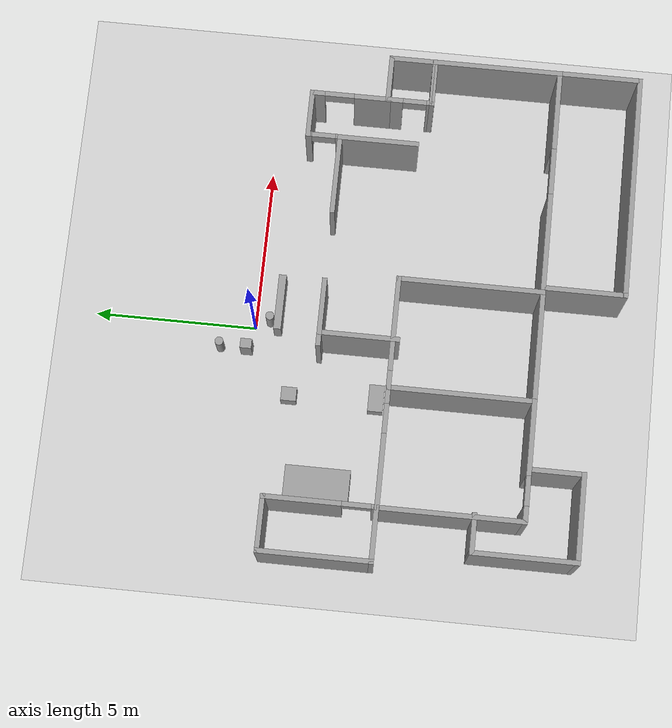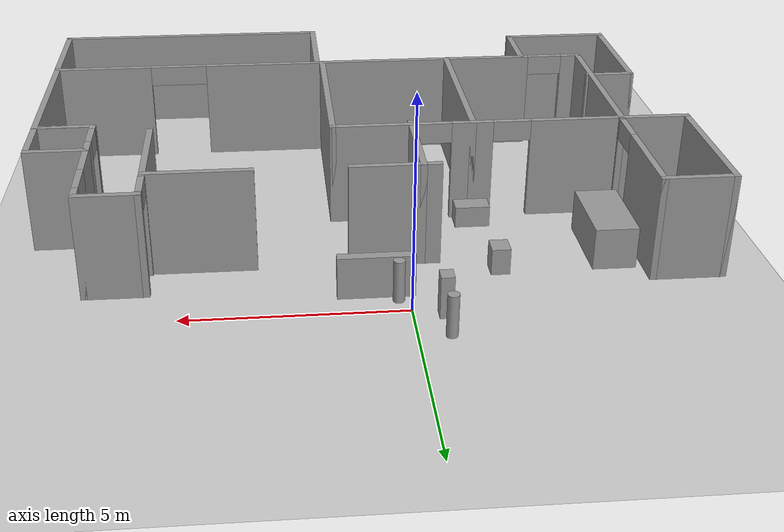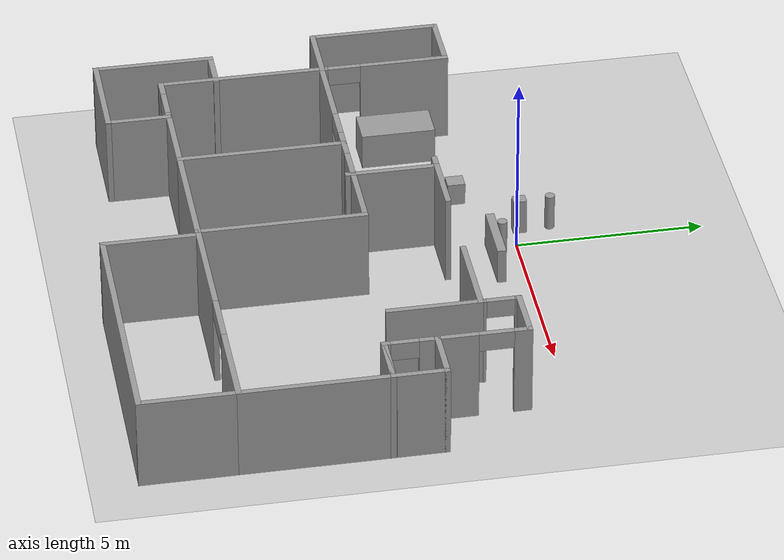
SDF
<sdf version="1.6">
 <world name="default">
  <model name="ground_plane">
   <static>1</static>
   <link name="link">
    <collision name="collision">
     <geometry><plane><normal>0 0 1</normal><size>100 100</size></plane></geometry>
     <surface><friction><ode><mu>100</mu><mu2>50</mu2></ode></friction></surface>
    </collision>
    <visual name="visual">
     <cast_shadows>0</cast_shadows>
     <geometry><plane><normal>0 0 1</normal><size>100 100</size></plane></geometry>
     <material>
      <script><uri>file://media/materials/scripts/gazebo.material</uri><name>Gazebo/Grey</name></script>
     </material>
    </visual>
   </link>
  </model>
  <model name="cma_varanda1">
   <pose>-6.32518 -2.59313 0 0 -0 0</pose>
   <link name="Wall_0">
    <pose>0.8 0 0 0 0 -1.5708</pose>
    <visual name="Wall_0_Visual_0">
     <pose>-0.5525 0 1.25 0 -0 0</pose>
     <geometry><box><size>2.395 0.15 2.5</size></box></geometry>
     <material>
      <script><uri>file://media/materials/scripts/gazebo.material</uri><name>Gazebo/Grey</name></script>
      <ambient>1 1 1 1</ambient>
     </material>
    </visual>
    <collision name="Wall_0_Collision_0">
     <geometry><box><size>2.395 0.15 2.5</size></box></geometry>
     <pose>-0.5525 0 1.25 0 -0 0</pose>
    </collision>
    <visual name="Wall_0_Visual_1">
     <pose>1.6375 0 1.25 0 -0 0</pose>
     <geometry><box><size>0.225 0.15 2.5</size></box></geometry>
     <material>
      <script><uri>file://media/materials/scripts/gazebo.material</uri><name>Gazebo/Grey</name></script>
      <ambient>1 1 1 1</ambient>
     </material>
    </visual>
    <collision name="Wall_0_Collision_1">
     <geometry><box><size>0.225 0.15 2.5</size></box></geometry>
     <pose>1.6375 0 1.25 0 -0 0</pose>
    </collision>
    <visual name="Wall_0_Visual_2">
     <pose>1.085 0 2.25 0 -0 0</pose>
     <geometry><box><size>0.88 0.15 0.5</size></box></geometry>
     <material>
      <script><uri>file://media/materials/scripts/gazebo.material</uri><name>Gazebo/Grey</name></script>
      <ambient>1 1 1 1</ambient>
     </material>
    </visual>
    <collision name="Wall_0_Collision_2">
     <geometry><box><size>0.88 0.15 0.5</size></box></geometry>
     <pose>1.085 0 2.25 0 -0 0</pose>
    </collision>
   </link>
   <link name="Wall_1">
    <collision name="Wall_1_Collision">
     <geometry><box><size>1.75 0.15 2.5</size></box></geometry>
     <pose>0 0 1.25 0 -0 0</pose>
    </collision>
    <visual name="Wall_1_Visual">
     <pose>0 0 1.25 0 -0 0</pose>
     <geometry><box><size>1.75 0.15 2.5</size></box></geometry>
     <material>
      <script><uri>file://media/materials/scripts/gazebo.material</uri><name>Gazebo/Grey</name></script>
      <ambient>1 1 1 1</ambient>
     </material>
    </visual>
    <pose>0 -1.675 0 0 -0 3.14159</pose>
   </link>
   <link name="Wall_2">
    <collision name="Wall_2_Collision">
     <geometry><box><size>3.5 0.15 2.5</size></box></geometry>
     <pose>0 0 1.25 0 -0 0</pose>
    </collision>
    <visual name="Wall_2_Visual">
     <pose>0 0 1.25 0 -0 0</pose>
     <geometry><box><size>3.5 0.15 2.5</size></box></geometry>
     <material>
      <script><uri>file://media/materials/scripts/gazebo.material</uri><name>Gazebo/Grey</name></script>
      <ambient>1 1 1 1</ambient>
     </material>
    </visual>
    <pose>-0.8 0 0 0 -0 1.5708</pose>
   </link>
   <link name="Wall_3">
    <collision name="Wall_3_Collision">
     <geometry><box><size>1.75 0.15 2.5</size></box></geometry>
     <pose>0 0 1.25 0 -0 0</pose>
    </collision>
    <visual name="Wall_3_Visual">
     <pose>0 0 1.25 0 -0 0</pose>
     <geometry><box><size>1.75 0.15 2.5</size></box></geometry>
     <material>
      <script><uri>file://media/materials/scripts/gazebo.material</uri><name>Gazebo/Grey</name></script>
      <ambient>1 1 1 1</ambient>
     </material>
    </visual>
    <pose>0 1.675 0 0 -0 0</pose>
   </link>
   <static>1</static>
  </model>
  <model name="cma_quartos">
   <pose>-2.58169 -7.26456 0 0 -0 0</pose>
   <link name="Wall_0">
    <collision name="Wall_0_Collision">
     <geometry><box><size>4.5 0.15 2.5</size></box></geometry>
     <pose>0 0 1.25 0 -0 0</pose>
    </collision>
    <visual name="Wall_0_Visual">
     <pose>0 0 1.25 0 -0 0</pose>
     <geometry><box><size>4.5 0.15 2.5</size></box></geometry>
     <material>
      <script><uri>file://media/materials/scripts/gazebo.material</uri><name>Gazebo/Grey</name></script>
      <ambient>1 1 1 1</ambient>
     </material>
    </visual>
    <pose>0.645 0.81 0 0 0 -1.5708</pose>
   </link>
   <link name="Wall_1">
    <pose>-1.155 -1.365 0 0 -0 3.14159</pose>
    <visual name="Wall_1_Visual_0">
     <pose>-0.7225 0 1.25 0 -0 0</pose>
     <geometry><box><size>2.305 0.15 2.5</size></box></geometry>
     <material>
      <script><uri>file://media/materials/scripts/gazebo.material</uri><name>Gazebo/Grey</name></script>
      <ambient>1 1 1 1</ambient>
     </material>
    </visual>
    <collision name="Wall_1_Collision_0">
     <geometry><box><size>2.305 0.15 2.5</size></box></geometry>
     <pose>-0.7225 0 1.25 0 -0 0</pose>
    </collision>
    <visual name="Wall_1_Visual_1">
     <pose>1.6025 0 1.25 0 -0 0</pose>
     <geometry><box><size>0.545 0.15 2.5</size></box></geometry>
     <material>
      <script><uri>file://media/materials/scripts/gazebo.material</uri><name>Gazebo/Grey</name></script>
      <ambient>1 1 1 1</ambient>
     </material>
    </visual>
    <collision name="Wall_1_Collision_1">
     <geometry><box><size>0.545 0.15 2.5</size></box></geometry>
     <pose>1.6025 0 1.25 0 -0 0</pose>
    </collision>
    <visual name="Wall_1_Visual_2">
     <pose>0.88 0 2.25 0 -0 0</pose>
     <geometry><box><size>0.9 0.15 0.5</size></box></geometry>
     <material>
      <script><uri>file://media/materials/scripts/gazebo.material</uri><name>Gazebo/Grey</name></script>
      <ambient>1 1 1 1</ambient>
     </material>
    </visual>
    <collision name="Wall_1_Collision_2">
     <geometry><box><size>0.9 0.15 0.5</size></box></geometry>
     <pose>0.88 0 2.25 0 -0 0</pose>
    </collision>
   </link>
   <link name="Wall_10">
    <collision name="Wall_10_Collision">
     <geometry><box><size>1.75 0.15 2.5</size></box></geometry>
     <pose>0 0 1.25 0 -0 0</pose>
    </collision>
    <visual name="Wall_10_Visual">
     <pose>0 0 1.25 0 -0 0</pose>
     <geometry><box><size>1.75 0.15 2.5</size></box></geometry>
     <material>
      <script><uri>file://media/materials/scripts/gazebo.material</uri><name>Gazebo/Grey</name></script>
      <ambient>1 1 1 1</ambient>
     </material>
    </visual>
    <pose>-1.395 -2.185 0 0 0 -1.5708</pose>
   </link>
   <link name="Wall_11">
    <collision name="Wall_11_Collision">
     <geometry><box><size>2.75 0.15 2.5</size></box></geometry>
     <pose>0 0 1.25 0 -0 0</pose>
    </collision>
    <visual name="Wall_11_Visual">
     <pose>0 0 1.25 0 -0 0</pose>
     <geometry><box><size>2.75 0.15 2.5</size></box></geometry>
     <material>
      <script><uri>file://media/materials/scripts/gazebo.material</uri><name>Gazebo/Grey</name></script>
      <ambient>1 1 1 1</ambient>
     </material>
    </visual>
    <pose>-2.695 -2.985 0 0 -0 3.14159</pose>
   </link>
   <link name="Wall_12">
    <collision name="Wall_12_Collision">
     <geometry><box><size>3.25 0.15 2.5</size></box></geometry>
     <pose>0 0 1.25 0 -0 0</pose>
    </collision>
    <visual name="Wall_12_Visual">
     <pose>0 0 1.25 0 -0 0</pose>
     <geometry><box><size>3.25 0.15 2.5</size></box></geometry>
     <material>
      <script><uri>file://media/materials/scripts/gazebo.material</uri><name>Gazebo/Grey</name></script>
      <ambient>1 1 1 1</ambient>
     </material>
    </visual>
    <pose>-3.995 -1.435 0 0 -0 1.5708</pose>
   </link>
   <link name="Wall_13">
    <collision name="Wall_13_Collision">
     <geometry><box><size>1.25 0.15 2.5</size></box></geometry>
     <pose>0 0 1.25 0 -0 0</pose>
    </collision>
    <visual name="Wall_13_Visual">
     <pose>0 0 1.25 0 -0 0</pose>
     <geometry><box><size>1.25 0.15 2.5</size></box></geometry>
     <material>
      <script><uri>file://media/materials/scripts/gazebo.material</uri><name>Gazebo/Grey</name></script>
      <ambient>1 1 1 1</ambient>
     </material>
    </visual>
    <pose>-3.445 0.115 0 0 -0 0</pose>
   </link>
   <link name="Wall_2">
    <collision name="Wall_2_Collision">
     <geometry><box><size>4.5 0.15 2.5</size></box></geometry>
     <pose>0 0 1.25 0 -0 0</pose>
    </collision>
    <visual name="Wall_2_Visual">
     <pose>0 0 1.25 0 -0 0</pose>
     <geometry><box><size>4.5 0.15 2.5</size></box></geometry>
     <material>
      <script><uri>file://media/materials/scripts/gazebo.material</uri><name>Gazebo/Grey</name></script>
      <ambient>1 1 1 1</ambient>
     </material>
    </visual>
    <pose>-2.955 0.81 0 0 -0 1.5708</pose>
   </link>
   <link name="Wall_3">
    <pose>-1.155 2.985 0 0 -0 0</pose>
    <visual name="Wall_3_Visual_0">
     <pose>-0.7325 0 1.25 0 -0 0</pose>
     <geometry><box><size>2.285 0.15 2.5</size></box></geometry>
     <material>
      <script><uri>file://media/materials/scripts/gazebo.material</uri><name>Gazebo/Grey</name></script>
      <ambient>1 1 1 1</ambient>
     </material>
    </visual>
    <collision name="Wall_3_Collision_0">
     <geometry><box><size>2.285 0.15 2.5</size></box></geometry>
     <pose>-0.7325 0 1.25 0 -0 0</pose>
    </collision>
    <visual name="Wall_3_Visual_1">
     <pose>1.5925 0 1.25 0 -0 0</pose>
     <geometry><box><size>0.565 0.15 2.5</size></box></geometry>
     <material>
      <script><uri>file://media/materials/scripts/gazebo.material</uri><name>Gazebo/Grey</name></script>
      <ambient>1 1 1 1</ambient>
     </material>
    </visual>
    <collision name="Wall_3_Collision_1">
     <geometry><box><size>0.565 0.15 2.5</size></box></geometry>
     <pose>1.5925 0 1.25 0 -0 0</pose>
    </collision>
    <visual name="Wall_3_Visual_2">
     <pose>0.86 0 2.25 0 -0 0</pose>
     <geometry><box><size>0.9 0.15 0.5</size></box></geometry>
     <material>
      <script><uri>file://media/materials/scripts/gazebo.material</uri><name>Gazebo/Grey</name></script>
      <ambient>1 1 1 1</ambient>
     </material>
    </visual>
    <collision name="Wall_3_Collision_2">
     <geometry><box><size>0.9 0.15 0.5</size></box></geometry>
     <pose>0.86 0 2.25 0 -0 0</pose>
    </collision>
   </link>
   <link name="Wall_6">
    <pose>2.32 2.985 0 0 -0 0</pose>
    <visual name="Wall_6_Visual_0">
     <pose>-1.4575 0 1.25 0 -0 0</pose>
     <geometry><box><size>0.585 0.15 2.5</size></box></geometry>
     <material>
      <script><uri>file://media/materials/scripts/gazebo.material</uri><name>Gazebo/Grey</name></script>
      <ambient>1 1 1 1</ambient>
     </material>
    </visual>
    <collision name="Wall_6_Collision_0">
     <geometry><box><size>0.585 0.15 2.5</size></box></geometry>
     <pose>-1.4575 0 1.25 0 -0 0</pose>
    </collision>
    <visual name="Wall_6_Visual_1">
     <pose>0.7425 0 1.25 0 -0 0</pose>
     <geometry><box><size>2.015 0.15 2.5</size></box></geometry>
     <material>
      <script><uri>file://media/materials/scripts/gazebo.material</uri><name>Gazebo/Grey</name></script>
      <ambient>1 1 1 1</ambient>
     </material>
    </visual>
    <collision name="Wall_6_Collision_1">
     <geometry><box><size>2.015 0.15 2.5</size></box></geometry>
     <pose>0.7425 0 1.25 0 -0 0</pose>
    </collision>
    <visual name="Wall_6_Visual_2">
     <pose>-0.715 0 2.25 0 -0 0</pose>
     <geometry><box><size>0.9 0.15 0.5</size></box></geometry>
     <material>
      <script><uri>file://media/materials/scripts/gazebo.material</uri><name>Gazebo/Grey</name></script>
      <ambient>1 1 1 1</ambient>
     </material>
    </visual>
    <collision name="Wall_6_Collision_2">
     <geometry><box><size>0.9 0.15 0.5</size></box></geometry>
     <pose>-0.715 0 2.25 0 -0 0</pose>
    </collision>
   </link>
   <link name="Wall_7">
    <collision name="Wall_7_Collision">
     <geometry><box><size>4.5 0.15 2.5</size></box></geometry>
     <pose>0 0 1.25 0 -0 0</pose>
    </collision>
    <visual name="Wall_7_Visual">
     <pose>0 0 1.25 0 -0 0</pose>
     <geometry><box><size>4.5 0.15 2.5</size></box></geometry>
     <material>
      <script><uri>file://media/materials/scripts/gazebo.material</uri><name>Gazebo/Grey</name></script>
      <ambient>1 1 1 1</ambient>
     </material>
    </visual>
    <pose>3.995 0.81 0 0 0 -1.5708</pose>
   </link>
   <link name="Wall_8">
    <collision name="Wall_8_Collision">
     <geometry><box><size>3.5 0.15 2.5</size></box></geometry>
     <pose>0 0 1.25 0 -0 0</pose>
    </collision>
    <visual name="Wall_8_Visual">
     <pose>0 0 1.25 0 -0 0</pose>
     <geometry><box><size>3.5 0.15 2.5</size></box></geometry>
     <material>
      <script><uri>file://media/materials/scripts/gazebo.material</uri><name>Gazebo/Grey</name></script>
      <ambient>1 1 1 1</ambient>
     </material>
    </visual>
    <pose>2.32 -1.365 0 0 -0 3.14159</pose>
   </link>
   <static>1</static>
  </model>
  <model name="cma_parede_t">
   <pose>0.159955 -3.24016 0 0 -0 0</pose>
   <link name="Wall_15">
    <collision name="Wall_15_Collision">
     <geometry><box><size>2.5 0.15 2.5</size></box></geometry>
     <pose>0 0 1.25 0 -0 0</pose>
    </collision>
    <visual name="Wall_15_Visual">
     <pose>0 0 1.25 0 -0 0</pose>
     <geometry><box><size>2.5 0.15 2.5</size></box></geometry>
     <material>
      <script><uri>file://media/materials/scripts/gazebo.material</uri><name>Gazebo/Grey</name></script>
      <ambient>1 1 1 1</ambient>
     </material>
    </visual>
    <pose>-0.625 0 0 0 -0 1.5708</pose>
   </link>
   <link name="Wall_16">
    <collision name="Wall_16_Collision">
     <geometry><box><size>0.5 0.15 2.5</size></box></geometry>
     <pose>0 0 1.25 0 -0 0</pose>
    </collision>
    <visual name="Wall_16_Visual">
     <pose>0 0 1.25 0 -0 0</pose>
     <geometry><box><size>0.5 0.15 2.5</size></box></geometry>
     <material>
      <script><uri>file://media/materials/scripts/gazebo.material</uri><name>Gazebo/Grey</name></script>
      <ambient>1 1 1 1</ambient>
     </material>
    </visual>
    <pose>-0.8 1.175 0 0 -0 3.14159</pose>
   </link>
   <link name="Wall_18">
    <collision name="Wall_18_Collision">
     <geometry><box><size>1.75 0.15 2.5</size></box></geometry>
     <pose>0 0 1.25 0 -0 0</pose>
    </collision>
    <visual name="Wall_18_Visual">
     <pose>0 0 1.25 0 -0 0</pose>
     <geometry><box><size>1.75 0.15 2.5</size></box></geometry>
     <material>
      <script><uri>file://media/materials/scripts/gazebo.material</uri><name>Gazebo/Grey</name></script>
      <ambient>1 1 1 1</ambient>
     </material>
    </visual>
    <pose>0.175 1.175 0 0 -0 0</pose>
   </link>
   <static>1</static>
  </model>
  <model name="cma_parede_L">
   <pose>4.97628 -6.69992 0 0 -0 0</pose>
   <link name="Wall_0">
    <pose>0 -1.925 0 0 -0 0</pose>
    <visual name="Wall_0_Visual_0">
     <pose>-1.985 0 1.25 0 -0 0</pose>
     <geometry><box><size>3.03 0.15 2.5</size></box></geometry>
     <material>
      <script><uri>file://media/materials/scripts/gazebo.material</uri><name>Gazebo/Grey</name></script>
      <ambient>1 1 1 1</ambient>
     </material>
    </visual>
    <collision name="Wall_0_Collision_0">
     <geometry><box><size>3.03 0.15 2.5</size></box></geometry>
     <pose>-1.985 0 1.25 0 -0 0</pose>
    </collision>
    <visual name="Wall_0_Visual_1">
     <pose>2.24 0 1.25 0 -0 0</pose>
     <geometry><box><size>2.52 0.15 2.5</size></box></geometry>
     <material>
      <script><uri>file://media/materials/scripts/gazebo.material</uri><name>Gazebo/Grey</name></script>
      <ambient>1 1 1 1</ambient>
     </material>
    </visual>
    <collision name="Wall_0_Collision_1">
     <geometry><box><size>2.52 0.15 2.5</size></box></geometry>
     <pose>2.24 0 1.25 0 -0 0</pose>
    </collision>
    <visual name="Wall_0_Visual_2">
     <pose>0.255 0 2.25 0 -0 0</pose>
     <geometry><box><size>1.45 0.15 0.5</size></box></geometry>
     <material>
      <script><uri>file://media/materials/scripts/gazebo.material</uri><name>Gazebo/Grey</name></script>
      <ambient>1 1 1 1</ambient>
     </material>
    </visual>
    <collision name="Wall_0_Collision_2">
     <geometry><box><size>1.45 0.15 0.5</size></box></geometry>
     <pose>0.255 0 2.25 0 -0 0</pose>
    </collision>
   </link>
   <link name="Wall_1">
    <collision name="Wall_1_Collision">
     <geometry><box><size>4 0.15 2.5</size></box></geometry>
     <pose>0 0 1.25 0 -0 0</pose>
    </collision>
    <visual name="Wall_1_Visual">
     <pose>0 0 1.25 0 -0 0</pose>
     <geometry><box><size>4 0.15 2.5</size></box></geometry>
     <material>
      <script><uri>file://media/materials/scripts/gazebo.material</uri><name>Gazebo/Grey</name></script>
      <ambient>1 1 1 1</ambient>
     </material>
    </visual>
    <pose>3.425 0 0 0 -0 1.5708</pose>
   </link>
   <link name="Wall_2">
    <collision name="Wall_2_Collision">
     <geometry><box><size>1.5 0.15 2.5</size></box></geometry>
     <pose>0 0 1.25 0 -0 0</pose>
    </collision>
    <visual name="Wall_2_Visual">
     <pose>0 0 1.25 0 -0 0</pose>
     <geometry><box><size>1.5 0.15 2.5</size></box></geometry>
     <material>
      <script><uri>file://media/materials/scripts/gazebo.material</uri><name>Gazebo/Grey</name></script>
      <ambient>1 1 1 1</ambient>
     </material>
    </visual>
    <pose>2.75 1.925 0 0 -0 3.14159</pose>
   </link>
   <static>1</static>
  </model>
  <model name="cma_lavabo">
   <pose>7.72297 -4.09302 0 0 -0 0</pose>
   <link name="Wall_4">
    <pose>-0.675 0 0 0 -0 1.5708</pose>
    <visual name="Wall_4_Visual_0">
     <pose>-0.635 0 1.25 0 -0 0</pose>
     <geometry><box><size>0.23 0.15 2.5</size></box></geometry>
     <material>
      <script><uri>file://media/materials/scripts/gazebo.material</uri><name>Gazebo/Grey</name></script>
      <ambient>1 1 1 1</ambient>
     </material>
    </visual>
    <collision name="Wall_4_Collision_0">
     <geometry><box><size>0.23 0.15 2.5</size></box></geometry>
     <pose>-0.635 0 1.25 0 -0 0</pose>
    </collision>
    <visual name="Wall_4_Visual_1">
     <pose>0.48 0 1.25 0 -0 0</pose>
     <geometry><box><size>0.54 0.15 2.5</size></box></geometry>
     <material>
      <script><uri>file://media/materials/scripts/gazebo.material</uri><name>Gazebo/Grey</name></script>
      <ambient>1 1 1 1</ambient>
     </material>
    </visual>
    <collision name="Wall_4_Collision_1">
     <geometry><box><size>0.54 0.15 2.5</size></box></geometry>
     <pose>0.48 0 1.25 0 -0 0</pose>
    </collision>
    <visual name="Wall_4_Visual_2">
     <pose>-0.155 0 2.25 0 -0 0</pose>
     <geometry><box><size>0.73 0.15 0.5</size></box></geometry>
     <material>
      <script><uri>file://media/materials/scripts/gazebo.material</uri><name>Gazebo/Grey</name></script>
      <ambient>1 1 1 1</ambient>
     </material>
    </visual>
    <collision name="Wall_4_Collision_2">
     <geometry><box><size>0.73 0.15 0.5</size></box></geometry>
     <pose>-0.155 0 2.25 0 -0 0</pose>
    </collision>
   </link>
   <link name="Wall_5">
    <collision name="Wall_5_Collision">
     <geometry><box><size>1.5 0.15 2.5</size></box></geometry>
     <pose>0 0 1.25 0 -0 0</pose>
    </collision>
    <visual name="Wall_5_Visual">
     <pose>0 0 1.25 0 -0 0</pose>
     <geometry><box><size>1.5 0.15 2.5</size></box></geometry>
     <material>
      <script><uri>file://media/materials/scripts/gazebo.material</uri><name>Gazebo/Grey</name></script>
      <ambient>1 1 1 1</ambient>
     </material>
    </visual>
    <pose>0 0.675 0 0 -0 0</pose>
   </link>
   <link name="Wall_6">
    <collision name="Wall_6_Collision">
     <geometry><box><size>1.5 0.15 2.5</size></box></geometry>
     <pose>0 0 1.25 0 -0 0</pose>
    </collision>
    <visual name="Wall_6_Visual">
     <pose>0 0 1.25 0 -0 0</pose>
     <geometry><box><size>1.5 0.15 2.5</size></box></geometry>
     <material>
      <script><uri>file://media/materials/scripts/gazebo.material</uri><name>Gazebo/Grey</name></script>
      <ambient>1 1 1 1</ambient>
     </material>
    </visual>
    <pose>0.675 0 0 0 0 -1.5708</pose>
   </link>
   <link name="Wall_7">
    <collision name="Wall_7_Collision">
     <geometry><box><size>1.5 0.15 2.5</size></box></geometry>
     <pose>0 0 1.25 0 -0 0</pose>
    </collision>
    <visual name="Wall_7_Visual">
     <pose>0 0 1.25 0 -0 0</pose>
     <geometry><box><size>1.5 0.15 2.5</size></box></geometry>
     <material>
      <script><uri>file://media/materials/scripts/gazebo.material</uri><name>Gazebo/Grey</name></script>
      <ambient>1 1 1 1</ambient>
     </material>
    </visual>
    <pose>0 -0.675 0 0 -0 3.14159</pose>
   </link>
   <static>1</static>
  </model>
  <model name="cma_L2">
   <pose>4.51683 -3.24587 0 0 -0 0</pose>
   <link name="Wall_10">
    <collision name="Wall_10_Collision">
     <geometry><box><size>2.5 0.15 2.5</size></box></geometry>
     <pose>0 0 1.25 0 -0 0</pose>
    </collision>
    <visual name="Wall_10_Visual">
     <pose>0 0 1.25 0 -0 0</pose>
     <geometry><box><size>2.5 0.15 2.5</size></box></geometry>
     <material>
      <script><uri>file://media/materials/scripts/gazebo.material</uri><name>Gazebo/Grey</name></script>
      <ambient>1 1 1 1</ambient>
     </material>
    </visual>
    <pose>1.175 0 0 0 0 -1.5708</pose>
   </link>
   <link name="Wall_9">
    <collision name="Wall_9_Collision">
     <geometry><box><size>2.5 0.15 2.5</size></box></geometry>
     <pose>0 0 1.25 0 -0 0</pose>
    </collision>
    <visual name="Wall_9_Visual">
     <pose>0 0 1.25 0 -0 0</pose>
     <geometry><box><size>2.5 0.15 2.5</size></box></geometry>
     <material>
      <script><uri>file://media/materials/scripts/gazebo.material</uri><name>Gazebo/Grey</name></script>
      <ambient>1 1 1 1</ambient>
     </material>
    </visual>
    <pose>0 1.175 0 0 -0 0</pose>
   </link>
   <static>1</static>
  </model>
  <model name="cma_L3">
   <pose>6.37221 -2.26022 0 0 -0 0</pose>
   <link name="Wall_12">
    <pose>-0.675 0.75 0 0 -0 1.5708</pose>
    <visual name="Wall_12_Visual_0">
     <pose>-0.46 0 1.25 0 -0 0</pose>
     <geometry><box><size>0.08 0.15 2.5</size></box></geometry>
     <material>
      <script><uri>file://media/materials/scripts/gazebo.material</uri><name>Gazebo/Grey</name></script>
      <ambient>1 1 1 1</ambient>
     </material>
    </visual>
    <collision name="Wall_12_Collision_0">
     <geometry><box><size>0.08 0.15 2.5</size></box></geometry>
     <pose>-0.46 0 1.25 0 -0 0</pose>
    </collision>
    <visual name="Wall_12_Visual_1">
     <pose>0.405 0 1.25 0 -0 0</pose>
     <geometry><box><size>0.19 0.15 2.5</size></box></geometry>
     <material>
      <script><uri>file://media/materials/scripts/gazebo.material</uri><name>Gazebo/Grey</name></script>
      <ambient>1 1 1 1</ambient>
     </material>
    </visual>
    <collision name="Wall_12_Collision_1">
     <geometry><box><size>0.19 0.15 2.5</size></box></geometry>
     <pose>0.405 0 1.25 0 -0 0</pose>
    </collision>
    <visual name="Wall_12_Visual_2">
     <pose>-0.055 0 2.25 0 -0 0</pose>
     <geometry><box><size>0.73 0.15 0.5</size></box></geometry>
     <material>
      <script><uri>file://media/materials/scripts/gazebo.material</uri><name>Gazebo/Grey</name></script>
      <ambient>1 1 1 1</ambient>
     </material>
    </visual>
    <collision name="Wall_12_Collision_2">
     <geometry><box><size>0.73 0.15 0.5</size></box></geometry>
     <pose>-0.055 0 2.25 0 -0 0</pose>
    </collision>
   </link>
   <link name="Wall_13">
    <collision name="Wall_13_Collision">
     <geometry><box><size>1.5 0.15 2.5</size></box></geometry>
     <pose>0 0 1.25 0 -0 0</pose>
    </collision>
    <visual name="Wall_13_Visual">
     <pose>0 0 1.25 0 -0 0</pose>
     <geometry><box><size>1.5 0.15 2.5</size></box></geometry>
     <material>
      <script><uri>file://media/materials/scripts/gazebo.material</uri><name>Gazebo/Grey</name></script>
      <ambient>1 1 1 1</ambient>
     </material>
    </visual>
    <pose>0 1.175 0 0 -0 0</pose>
   </link>
   <link name="Wall_14">
    <pose>0.675 0 0 0 0 -1.5708</pose>
    <visual name="Wall_14_Visual_0">
     <pose>-1.0175 0 1.25 0 -0 0</pose>
     <geometry><box><size>0.465 0.15 2.5</size></box></geometry>
     <material>
      <script><uri>file://media/materials/scripts/gazebo.material</uri><name>Gazebo/Grey</name></script>
      <ambient>1 1 1 1</ambient>
     </material>
    </visual>
    <collision name="Wall_14_Collision_0">
     <geometry><box><size>0.465 0.15 2.5</size></box></geometry>
     <pose>-1.0175 0 1.25 0 -0 0</pose>
    </collision>
    <visual name="Wall_14_Visual_1">
     <pose>0.6825 0 1.25 0 -0 0</pose>
     <geometry><box><size>1.135 0.15 2.5</size></box></geometry>
     <material>
      <script><uri>file://media/materials/scripts/gazebo.material</uri><name>Gazebo/Grey</name></script>
      <ambient>1 1 1 1</ambient>
     </material>
    </visual>
    <collision name="Wall_14_Collision_1">
     <geometry><box><size>1.135 0.15 2.5</size></box></geometry>
     <pose>0.6825 0 1.25 0 -0 0</pose>
    </collision>
    <visual name="Wall_14_Visual_2">
     <pose>-0.335 0 2.25 0 -0 0</pose>
     <geometry><box><size>0.9 0.15 0.5</size></box></geometry>
     <material>
      <script><uri>file://media/materials/scripts/gazebo.material</uri><name>Gazebo/Grey</name></script>
      <ambient>1 1 1 1</ambient>
     </material>
    </visual>
    <collision name="Wall_14_Collision_2">
     <geometry><box><size>0.9 0.15 0.5</size></box></geometry>
     <pose>-0.335 0 2.25 0 -0 0</pose>
    </collision>
   </link>
   <static>1</static>
  </model>
  <model name="cma_U">
   <pose>4.97895 -9.92408 0 0 -0 0</pose>
   <link name="Wall_16">
    <collision name="Wall_16_Collision">
     <geometry><box><size>2.5 0.15 2.5</size></box></geometry>
     <pose>0 0 1.25 0 -0 0</pose>
    </collision>
    <visual name="Wall_16_Visual">
     <pose>0 0 1.25 0 -0 0</pose>
     <geometry><box><size>2.5 0.15 2.5</size></box></geometry>
     <material>
      <script><uri>file://media/materials/scripts/gazebo.material</uri><name>Gazebo/Grey</name></script>
      <ambient>1 1 1 1</ambient>
     </material>
    </visual>
    <pose>-3.425 0 0 0 0 -1.5708</pose>
   </link>
   <link name="Wall_17">
    <collision name="Wall_17_Collision">
     <geometry><box><size>7 0.15 2.5</size></box></geometry>
     <pose>0 0 1.25 0 -0 0</pose>
    </collision>
    <visual name="Wall_17_Visual">
     <pose>0 0 1.25 0 -0 0</pose>
     <geometry><box><size>7 0.15 2.5</size></box></geometry>
     <material>
      <script><uri>file://media/materials/scripts/gazebo.material</uri><name>Gazebo/Grey</name></script>
      <ambient>1 1 1 1</ambient>
     </material>
    </visual>
    <pose>0 -1.175 0 0 -0 0</pose>
   </link>
   <link name="Wall_18">
    <collision name="Wall_18_Collision">
     <geometry><box><size>2.5 0.15 2.5</size></box></geometry>
     <pose>0 0 1.25 0 -0 0</pose>
    </collision>
    <visual name="Wall_18_Visual">
     <pose>0 0 1.25 0 -0 0</pose>
     <geometry><box><size>2.5 0.15 2.5</size></box></geometry>
     <material>
      <script><uri>file://media/materials/scripts/gazebo.material</uri><name>Gazebo/Grey</name></script>
      <ambient>1 1 1 1</ambient>
     </material>
    </visual>
    <pose>3.425 0 0 0 -0 1.5708</pose>
   </link>
   <static>1</static>
  </model>
  <model name="cma_armario">
   <link name="link_0">
    <pose>1.32157 0.885178 0.5 0 -0 0</pose>
    <inertial>
     <mass>0.402376</mass>
     <inertia>
      <ixx>0.0353686</ixx>
      <ixy>0</ixy>
      <ixz>0</ixz>
      <iyy>0.132616</iyy>
      <iyz>0</iyz>
      <izz>0.100922</izz>
     </inertia>
    </inertial>
    <visual name="visual">
     <geometry><box><size>1.71877 0.234069 1</size></box></geometry>
     <material>
      <lighting>1</lighting>
      <script><uri>file://media/materials/scripts/gazebo.material</uri><name>Gazebo/Grey</name></script>
      <ambient>0.3 0.3 0.3 1</ambient>
      <diffuse>0.7 0.7 0.7 1</diffuse>
      <specular>0.01 0.01 0.01 1</specular>
      <emissive>0 0 0 1</emissive>
     </material>
    </visual>
    <collision name="collision">
     <geometry><box><size>1.71877 0.234069 1</size></box></geometry>
     <surface>
      <friction>
       <ode><mu>1</mu><mu2>1</mu2><fdir1>0 0 0</fdir1><slip1>0</slip1><slip2>0</slip2></ode>
       <torsional>
        <coefficient>1</coefficient>
        <patch_radius>0</patch_radius>
        <surface_radius>0</surface_radius>
        <use_patch_radius>1</use_patch_radius>
        <ode><slip>0</slip></ode>
       </torsional>
      </friction>
      <bounce><restitution_coefficient>0</restitution_coefficient><threshold>1e+06</threshold></bounce>
      <contact>
       <collide_without_contact>0</collide_without_contact>
       <collide_without_contact_bitmask>1</collide_without_contact_bitmask>
       <collide_bitmask>1</collide_bitmask>
       <ode>
        <soft_cfm>0</soft_cfm>
        <soft_erp>0.2</soft_erp>
        <kp>1e+13</kp>
        <kd>1</kd>
        <max_vel>0.01</max_vel>
        <min_depth>0</min_depth>
       </ode>
       <bullet>
        <split_impulse>1</split_impulse>
        <split_impulse_penetration_threshold>-0.01</split_impulse_penetration_threshold>
        <soft_cfm>0</soft_cfm>
        <soft_erp>0.2</soft_erp>
        <kp>1e+13</kp>
        <kd>1</kd>
       </bullet>
      </contact>
     </surface>
    </collision>
   </link>
   <static>0</static>
   <pose>-0.614128 -1.59222 -2e-06 2e-06 -0 0.000793</pose>
  </model>
  <model name="cma_lixo">
   <link name="link_1">
    <pose>0.882962 1.81586 0.5 0 -0 0</pose>
    <inertial>
     <mass>0.0687644</mass>
     <inertia>
      <ixx>0.00602588</ixx>
      <ixy>0</ixy>
      <ixz>0</ixz>
      <iyy>0.00602588</iyy>
      <iyz>0</iyz>
      <izz>0.000591068</izz>
     </inertia>
    </inertial>
    <visual name="visual">
     <geometry><cylinder><radius>0.131112</radius><length>1</length></cylinder></geometry>
     <material>
      <lighting>1</lighting>
      <script><uri>file://media/materials/scripts/gazebo.material</uri><name>Gazebo/Grey</name></script>
      <ambient>0.3 0.3 0.3 1</ambient>
      <diffuse>0.7 0.7 0.7 1</diffuse>
      <specular>0.01 0.01 0.01 1</specular>
      <emissive>0 0 0 1</emissive>
     </material>
    </visual>
    <collision name="collision">
     <geometry><cylinder><radius>0.131112</radius><length>1</length></cylinder></geometry>
     <surface>
      <friction>
       <ode><mu>1</mu><mu2>1</mu2><fdir1>0 0 0</fdir1><slip1>0</slip1><slip2>0</slip2></ode>
       <torsional>
        <coefficient>1</coefficient>
        <patch_radius>0</patch_radius>
        <surface_radius>0</surface_radius>
        <use_patch_radius>1</use_patch_radius>
        <ode><slip>0</slip></ode>
       </torsional>
      </friction>
      <bounce><restitution_coefficient>0</restitution_coefficient><threshold>1e+06</threshold></bounce>
      <contact>
       <collide_without_contact>0</collide_without_contact>
       <collide_without_contact_bitmask>1</collide_without_contact_bitmask>
       <collide_bitmask>1</collide_bitmask>
       <ode>
        <soft_cfm>0</soft_cfm>
        <soft_erp>0.2</soft_erp>
        <kp>1e+13</kp>
        <kd>1</kd>
        <max_vel>0.01</max_vel>
        <min_depth>0</min_depth>
       </ode>
       <bullet>
        <split_impulse>1</split_impulse>
        <split_impulse_penetration_threshold>-0.01</split_impulse_penetration_threshold>
        <soft_cfm>0</soft_cfm>
        <soft_erp>0.2</soft_erp>
        <kp>1e+13</kp>
        <kd>1</kd>
       </bullet>
      </contact>
     </surface>
    </collision>
   </link>
   <static>0</static>
   <pose>-0.627841 -2.26699 -1e-06 0 -0 0.010422</pose>
  </model>
  <model name="cma_lixo_0">
   <link name="link_1">
    <pose>0.882962 1.81586 0.5 0 -0 0</pose>
    <inertial>
     <mass>0.0687644</mass>
     <inertia>
      <ixx>0.00602588</ixx>
      <ixy>0</ixy>
      <ixz>0</ixz>
      <iyy>0.00602588</iyy>
      <iyz>0</iyz>
      <izz>0.000591068</izz>
     </inertia>
    </inertial>
    <visual name="visual">
     <geometry><cylinder><radius>0.131112</radius><length>1</length></cylinder></geometry>
     <material>
      <lighting>1</lighting>
      <script><uri>file://media/materials/scripts/gazebo.material</uri><name>Gazebo/Grey</name></script>
      <ambient>0.3 0.3 0.3 1</ambient>
      <diffuse>0.7 0.7 0.7 1</diffuse>
      <specular>0.01 0.01 0.01 1</specular>
      <emissive>0 0 0 1</emissive>
     </material>
    </visual>
    <collision name="collision">
     <geometry><cylinder><radius>0.131112</radius><length>1</length></cylinder></geometry>
     <surface>
      <friction>
       <ode><mu>1</mu><mu2>1</mu2><fdir1>0 0 0</fdir1><slip1>0</slip1><slip2>0</slip2></ode>
       <torsional>
        <coefficient>1</coefficient>
        <patch_radius>0</patch_radius>
        <surface_radius>0</surface_radius>
        <use_patch_radius>1</use_patch_radius>
        <ode><slip>0</slip></ode>
       </torsional>
      </friction>
      <bounce><restitution_coefficient>0</restitution_coefficient><threshold>1e+06</threshold></bounce>
      <contact>
       <collide_without_contact>0</collide_without_contact>
       <collide_without_contact_bitmask>1</collide_without_contact_bitmask>
       <collide_bitmask>1</collide_bitmask>
       <ode>
        <soft_cfm>0</soft_cfm>
        <soft_erp>0.2</soft_erp>
        <kp>1e+13</kp>
        <kd>1</kd>
        <max_vel>0.01</max_vel>
        <min_depth>0</min_depth>
       </ode>
       <bullet>
        <split_impulse>1</split_impulse>
        <split_impulse_penetration_threshold>-0.01</split_impulse_penetration_threshold>
        <soft_cfm>0</soft_cfm>
        <soft_erp>0.2</soft_erp>
        <kp>1e+13</kp>
        <kd>1</kd>
       </bullet>
      </contact>
     </surface>
    </collision>
   </link>
   <static>0</static>
   <pose>-1.59052 -0.796852 -3e-06 0 -0 0.000705</pose>
  </model>
  <model name="unit_box_0">
   <pose>-0.697516 0.193797 0.5 0 -2e-06 4e-06</pose>
   <link name="link">
    <inertial>
     <mass>1</mass>
     <inertia>
      <ixx>0.166667</ixx>
      <ixy>0</ixy>
      <ixz>0</ixz>
      <iyy>0.166667</iyy>
      <iyz>0</iyz>
      <izz>0.166667</izz>
     </inertia>
    </inertial>
    <collision name="collision"><geometry><box><size>0.298595 0.35513 1</size></box></geometry></collision>
    <visual name="visual">
     <geometry><box><size>0.298595 0.35513 1</size></box></geometry>
     <material>
      <script><name>Gazebo/Grey</name><uri>file://media/materials/scripts/gazebo.material</uri></script>
     </material>
    </visual>
   </link>
  </model>
  <model name="cma_sofa2">
   <link name="link_0">
    <pose>-4.668 -2.00601 0.5 0 -0 0</pose>
    <inertial>
     <mass>1.98683</mass>
     <inertia>
      <ixx>0.819149</ixx>
      <ixy>0</ixy>
      <ixz>0</ixz>
      <iyy>0.331138</iyy>
      <iyz>0</iyz>
      <izz>0.819149</izz>
     </inertia>
    </inertial>
    <visual name="visual">
     <geometry><box><size>1 1.98682 1</size></box></geometry>
     <material>
      <lighting>1</lighting>
      <script><uri>file://media/materials/scripts/gazebo.material</uri><name>Gazebo/Grey</name></script>
      <ambient>0.3 0.3 0.3 1</ambient>
      <diffuse>0.7 0.7 0.7 1</diffuse>
      <specular>0.01 0.01 0.01 1</specular>
      <emissive>0 0 0 1</emissive>
     </material>
    </visual>
    <collision name="collision">
     <geometry><box><size>1 1.98682 1</size></box></geometry>
     <surface>
      <friction>
       <ode><mu>1</mu><mu2>1</mu2><fdir1>0 0 0</fdir1><slip1>0</slip1><slip2>0</slip2></ode>
       <torsional>
        <coefficient>1</coefficient>
        <patch_radius>0</patch_radius>
        <surface_radius>0</surface_radius>
        <use_patch_radius>1</use_patch_radius>
        <ode><slip>0</slip></ode>
       </torsional>
      </friction>
      <bounce><restitution_coefficient>0</restitution_coefficient><threshold>1e+06</threshold></bounce>
      <contact>
       <collide_without_contact>0</collide_without_contact>
       <collide_without_contact_bitmask>1</collide_without_contact_bitmask>
       <collide_bitmask>1</collide_bitmask>
       <ode>
        <soft_cfm>0</soft_cfm>
        <soft_erp>0.2</soft_erp>
        <kp>1e+13</kp>
        <kd>1</kd>
        <max_vel>0.01</max_vel>
        <min_depth>0</min_depth>
       </ode>
       <bullet>
        <split_impulse>1</split_impulse>
        <split_impulse_penetration_threshold>-0.01</split_impulse_penetration_threshold>
        <soft_cfm>0</soft_cfm>
        <soft_erp>0.2</soft_erp>
        <kp>1e+13</kp>
        <kd>1</kd>
       </bullet>
      </contact>
     </surface>
    </collision>
   </link>
   <static>0</static>
   <pose>-0.128911 -0.395498 0 0 -0 0</pose>
  </model>
  <model name="cma_bau_s">
   <link name="link_1">
    <pose>0.109594 0.272293 0 0 -0 0</pose>
    <inertial>
     <mass>0.125479</mass>
     <inertia>
      <ixx>0.00641943</ixx>
      <ixy>0</ixy>
      <ixz>0</ixz>
      <iyy>0.0059754</iyy>
      <iyz>0</iyz>
      <izz>0.00422085</izz>
     </inertia>
    </inertial>
    <visual name="visual">
     <geometry><box><size>0.424964 0.472283 0.625118</size></box></geometry>
     <material>
      <lighting>1</lighting>
      <script><uri>file://media/materials/scripts/gazebo.material</uri><name>Gazebo/Grey</name></script>
      <ambient>0.3 0.3 0.3 1</ambient>
      <diffuse>0.7 0.7 0.7 1</diffuse>
      <specular>0.01 0.01 0.01 1</specular>
      <emissive>0 0 0 1</emissive>
     </material>
    </visual>
    <collision name="collision">
     <geometry><box><size>0.424964 0.472283 0.625118</size></box></geometry>
     <surface>
      <friction>
       <ode><mu>1</mu><mu2>1</mu2><fdir1>0 0 0</fdir1><slip1>0</slip1><slip2>0</slip2></ode>
       <torsional>
        <coefficient>1</coefficient>
        <patch_radius>0</patch_radius>
        <surface_radius>0</surface_radius>
        <use_patch_radius>1</use_patch_radius>
        <ode><slip>0</slip></ode>
       </torsional>
      </friction>
      <bounce><restitution_coefficient>0</restitution_coefficient><threshold>1e+06</threshold></bounce>
      <contact>
       <collide_without_contact>0</collide_without_contact>
       <collide_without_contact_bitmask>1</collide_without_contact_bitmask>
       <collide_bitmask>1</collide_bitmask>
       <ode>
        <soft_cfm>0</soft_cfm>
        <soft_erp>0.2</soft_erp>
        <kp>1e+13</kp>
        <kd>1</kd>
        <max_vel>0.01</max_vel>
        <min_depth>0</min_depth>
       </ode>
       <bullet>
        <split_impulse>1</split_impulse>
        <split_impulse_penetration_threshold>-0.01</split_impulse_penetration_threshold>
        <soft_cfm>0</soft_cfm>
        <soft_erp>0.2</soft_erp>
        <kp>1e+13</kp>
        <kd>1</kd>
       </bullet>
      </contact>
     </surface>
    </collision>
   </link>
   <static>0</static>
   <pose>-2.20978 -1.54064 0.5 0 -0 0</pose>
  </model>
  <model name="cma_armario_s">
   <link name="link_1">
    <pose>-2e-06 -3e-06 0 0 -0 0</pose>
    <inertial>
     <mass>0.390159</mass>
     <inertia>
      <ixx>0.039647</ixx>
      <ixy>0</ixy>
      <ixz>0</ixz>
      <iyy>0.0550708</iyy>
      <iyz>0</iyz>
      <izz>0.0296912</izz>
     </inertia>
    </inertial>
    <visual name="visual">
     <geometry><box><size>0.832942 0.468397 1</size></box></geometry>
     <material>
      <lighting>1</lighting>
      <script><uri>file://media/materials/scripts/gazebo.material</uri><name>Gazebo/Grey</name></script>
      <ambient>0.3 0.3 0.3 1</ambient>
      <diffuse>0.7 0.7 0.7 1</diffuse>
      <specular>0.01 0.01 0.01 1</specular>
      <emissive>0 0 0 1</emissive>
     </material>
    </visual>
    <collision name="collision">
     <geometry><box><size>0.832942 0.468397 1</size></box></geometry>
     <surface>
      <friction>
       <ode><mu>1</mu><mu2>1</mu2><fdir1>0 0 0</fdir1><slip1>0</slip1><slip2>0</slip2></ode>
       <torsional>
        <coefficient>1</coefficient>
        <patch_radius>0</patch_radius>
        <surface_radius>0</surface_radius>
        <use_patch_radius>1</use_patch_radius>
        <ode><slip>0</slip></ode>
       </torsional>
      </friction>
      <bounce><restitution_coefficient>0</restitution_coefficient><threshold>1e+06</threshold></bounce>
      <contact>
       <collide_without_contact>0</collide_without_contact>
       <collide_without_contact_bitmask>1</collide_without_contact_bitmask>
       <collide_bitmask>1</collide_bitmask>
       <ode>
        <soft_cfm>0</soft_cfm>
        <soft_erp>0.2</soft_erp>
        <kp>1e+13</kp>
        <kd>1</kd>
        <max_vel>0.01</max_vel>
        <min_depth>0</min_depth>
       </ode>
       <bullet>
        <split_impulse>1</split_impulse>
        <split_impulse_penetration_threshold>-0.01</split_impulse_penetration_threshold>
        <soft_cfm>0</soft_cfm>
        <soft_erp>0.2</soft_erp>
        <kp>1e+13</kp>
        <kd>1</kd>
       </bullet>
      </contact>
     </surface>
    </collision>
   </link>
   <static>0</static>
   <pose>-1.91898 -3.93451 0 0 -0 0</pose>
  </model>
 </world>
</sdf>
